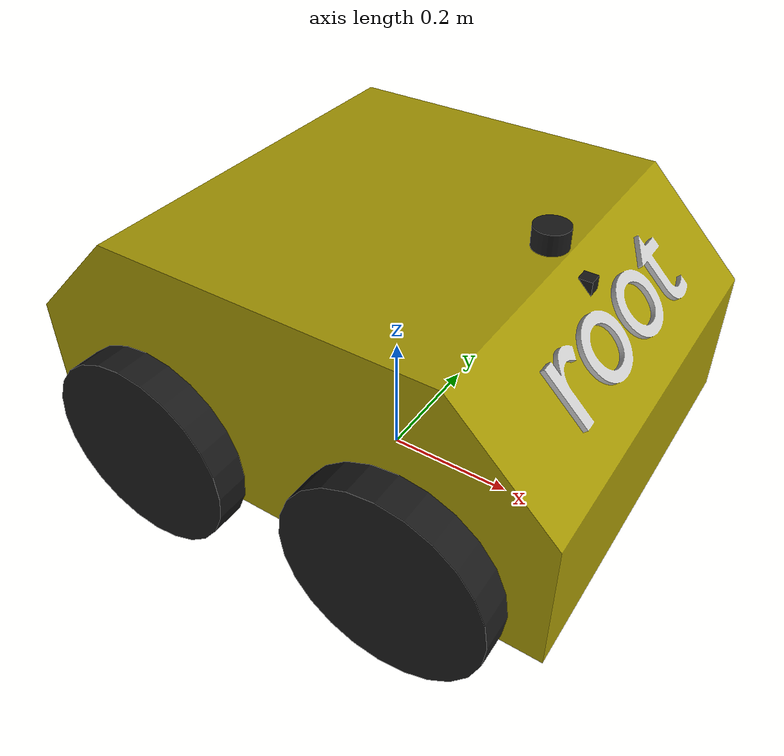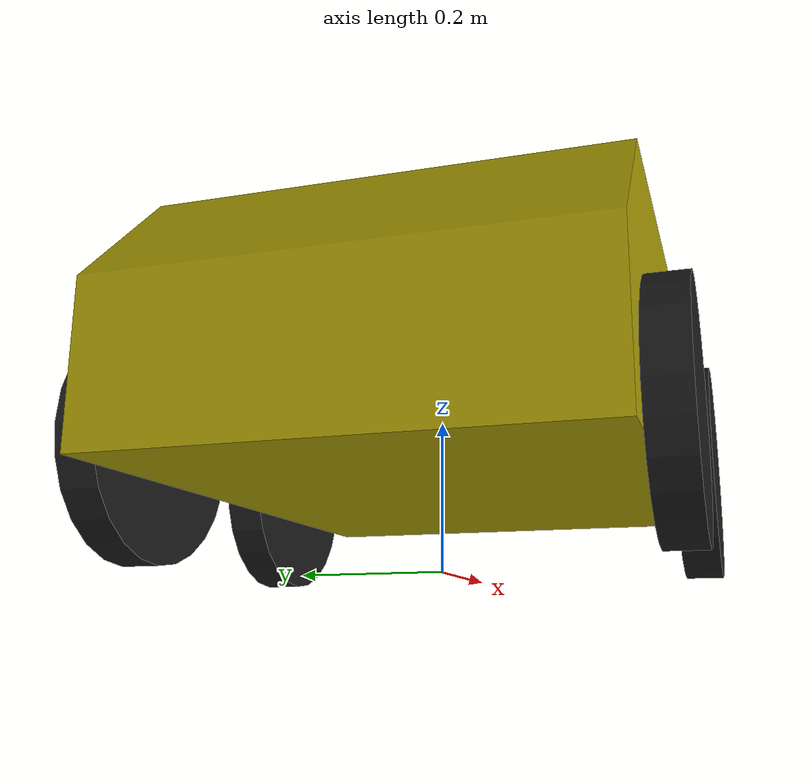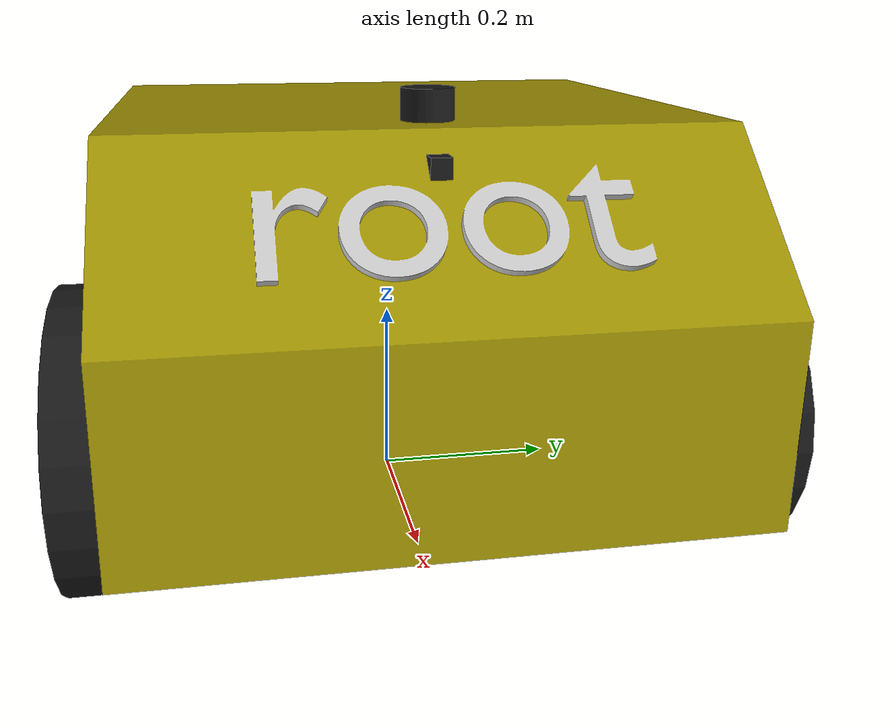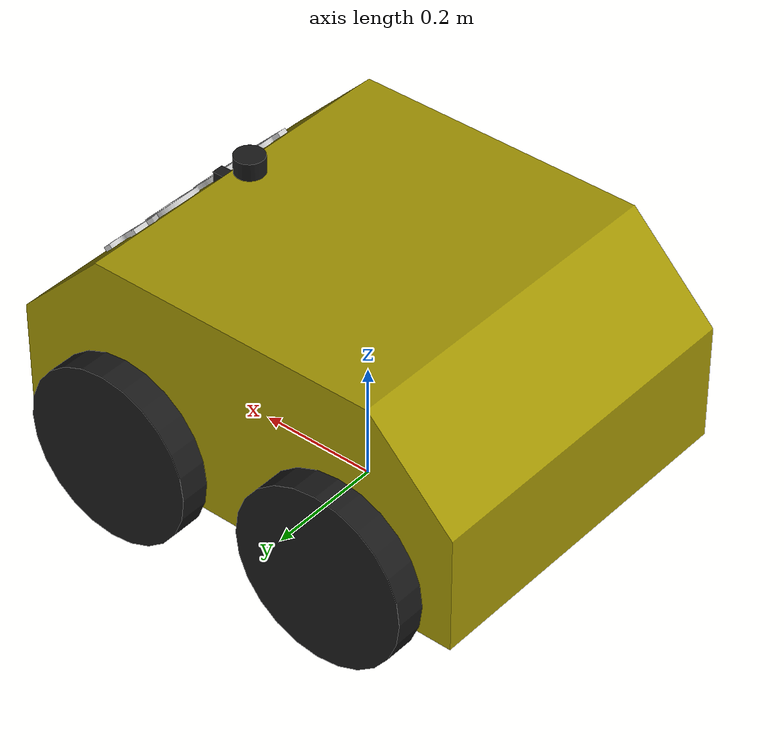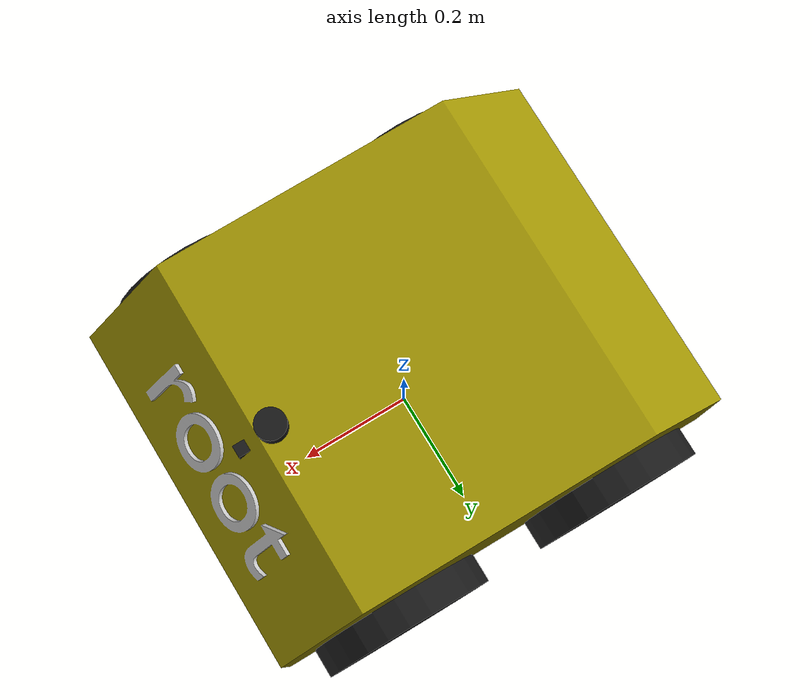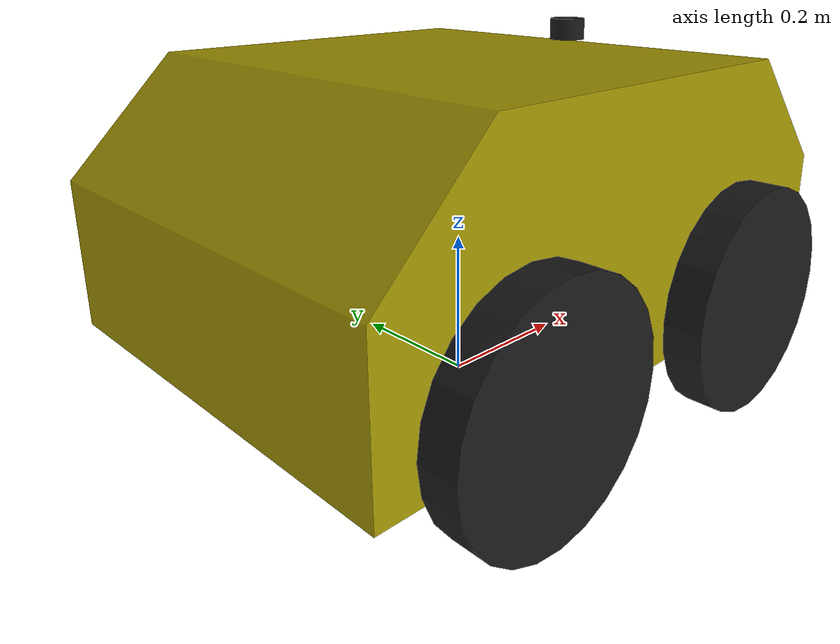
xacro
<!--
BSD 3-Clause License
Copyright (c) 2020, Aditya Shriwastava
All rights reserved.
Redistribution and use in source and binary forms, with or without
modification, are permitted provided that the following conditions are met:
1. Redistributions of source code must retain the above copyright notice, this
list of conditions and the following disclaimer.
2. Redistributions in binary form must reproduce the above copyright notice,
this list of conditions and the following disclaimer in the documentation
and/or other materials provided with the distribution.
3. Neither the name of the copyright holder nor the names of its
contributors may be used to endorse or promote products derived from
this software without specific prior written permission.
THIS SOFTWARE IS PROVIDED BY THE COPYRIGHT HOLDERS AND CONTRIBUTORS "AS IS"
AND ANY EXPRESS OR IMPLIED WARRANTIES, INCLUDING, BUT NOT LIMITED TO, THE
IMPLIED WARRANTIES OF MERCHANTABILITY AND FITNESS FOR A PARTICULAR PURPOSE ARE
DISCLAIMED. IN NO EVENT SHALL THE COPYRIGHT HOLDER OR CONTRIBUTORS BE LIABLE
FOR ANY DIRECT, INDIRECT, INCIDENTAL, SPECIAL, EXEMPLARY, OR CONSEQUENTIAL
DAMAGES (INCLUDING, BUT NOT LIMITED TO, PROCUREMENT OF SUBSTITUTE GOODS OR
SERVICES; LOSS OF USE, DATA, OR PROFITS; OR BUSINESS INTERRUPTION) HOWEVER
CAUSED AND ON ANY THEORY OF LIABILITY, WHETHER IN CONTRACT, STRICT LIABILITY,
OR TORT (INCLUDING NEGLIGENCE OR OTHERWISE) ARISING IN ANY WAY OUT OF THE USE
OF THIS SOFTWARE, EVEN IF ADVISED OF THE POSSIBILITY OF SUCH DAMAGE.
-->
<?xml version="1.0"?>

<robot xmlns:xacro="http://www.ros.org/wiki/xacro" name="root">

  <xacro:arg name="enable_lidar_2d" default="true"/>
  <xacro:arg name="enable_front_camera" default="true"/>
  <xacro:arg name="enable_imu" default="true"/>
  <xacro:arg name="enable_lidar_3d" default="false"/>
  <xacro:arg name="enable_front_stereo_camera" default="false"/>

	<!--Material description-->
	<material name="Black">
		<color rgba="0.1 0.1 0.1 1"/>
	</material>

  <material name="Red">
    <color rgba="0.7 0.1 0.1 1"/>
  </material>

	<!--Link description-->
	<link name="base_footprint"/>

	<link name="base_link">
		<inertial>
			<origin xyz="0 0 ${164/1000}" rpy="0 0 0"/>
			<mass value="6" />
			<inertia ixx="0.2370" ixy="0" ixz="0"
							 iyy="0.3401" iyz="0"
							 izz="0.4631" />
		</inertial>
		<visual>
			<origin xyz="0 0 0" rpy="0 0 0" />
			<geometry>
				<mesh filename="package://root_description/meshes/base_link/base_link_visual.dae" />
			</geometry>
		</visual>
		<collision>
			<origin xyz="0 0 0" rpy="0 0 0" />
			<geometry>
				<mesh filename="package://root_description/meshes/base_link/base_link_collision.stl" />
			</geometry>
		</collision>
	</link>

  <xacro:macro name="wheel" params="side position">
    <link name="wheel_${side}_${position}">
      <inertial>
        <origin xyz="0 0 0" rpy="0 0 0"/>
        <mass value="0.5" />
        <inertia ixx="0.0056"
                 ixy="0"
                 ixz="0"
                 iyy="0.0112"
                 iyz="0"
                 izz="0.0056" />
      </inertial>
      <visual>
        <origin xyz="0 0 0" rpy="${pi/2} 0 0" />
        <geometry>
          <cylinder length="0.05" radius="0.15"/>
        </geometry>
        <material name="Black"/>
      </visual>
      <collision>
        <origin xyz="0 0 0" rpy="${pi/2} 0 0" />
        <geometry>
          <cylinder length="0.05" radius="0.15"/>
        </geometry>
      </collision>
    </link>
  </xacro:macro>

	<xacro:wheel side="right" position="front"/>
  <xacro:wheel side="right" position="rear"/>
	<xacro:wheel side="left" position="front"/>
  <xacro:wheel side="left" position="rear"/>

  <!--Gazebo additional link properties-->
  <xacro:macro name="wheel_gazebo" params="side position">
    <gazebo reference="wheel_${side}_${position}">
      <material>Gazebo/Black</material>
      <mu1>1</mu1>
      <mu2>1</mu2>
      <kp>10000000.0</kp>
      <kd>1.0</kd>
      <fdir1>0 0 1</fdir1>
    </gazebo>
  </xacro:macro>

  <xacro:wheel_gazebo side="right" position="front"/>
  <xacro:wheel_gazebo side="right" position="rear"/>
  <xacro:wheel_gazebo side="left" position="front"/>
  <xacro:wheel_gazebo side="left" position="rear"/>

	<!--Joints description-->
	<joint name="base_footprint_base_link_joint" type="fixed">
    <origin xyz="0 0 ${100/1000}" rpy="0 0 0" />
    <parent link="base_footprint"/>
    <child link="base_link"/>
  </joint>

  <xacro:macro name="wheel_joint" params="side position *origin">
    <joint name="base_link_wheel_${side}_${position}_joint" type="continuous">
      <xacro:insert_block name="origin"/>
      <parent link="base_link"/>
      <child link="wheel_${side}_${position}"/>
      <axis xyz="0 1 0"/>
      <dynamics damping="0.7" friction="1.0"/>
    </joint>
  </xacro:macro>

  <xacro:wheel_joint side="right" position="front">
    <origin xyz="${200/1000} ${-325/1000} ${50/1000}" rpy="0 0 0"/>
  </xacro:wheel_joint>

  <xacro:wheel_joint side="right" position="rear">
    <origin xyz="${-200/1000} ${-325/1000} ${50/1000}" rpy="0 0 0"/>
  </xacro:wheel_joint>

  <xacro:wheel_joint side="left" position="front">
    <origin xyz="${200/1000} ${325/1000} ${50/1000}" rpy="0 0 0"/>
  </xacro:wheel_joint>

  <xacro:wheel_joint side="left" position="rear">
    <origin xyz="${-200/1000} ${325/1000} ${50/1000}" rpy="0 0 0"/>
  </xacro:wheel_joint>

  <!--Gazebo ros_control plugin related-->
  <gazebo>
    <plugin name="gazebo_ros_control" filename="libgazebo_ros_control.so">
      <robotNamespace>/root</robotNamespace>
      <controlPeriod>0.02</controlPeriod>
      <robotSimType>gazebo_ros_control/DefaultRobotHWSim</robotSimType>
    </plugin>
  </gazebo>

  <xacro:macro name="wheel_transmission" params="side position">
    <transmission name="base_link_wheel_${side}_${position}_transmission">
      <type>transmission_interface/SimpleTransmission</type>
      <joint name="base_link_wheel_${side}_${position}_joint">
        <hardwareInterface>hardware_interface/VelocityJointInterface</hardwareInterface>
      </joint>
      <actuator name="base_link_wheel_${side}_${position}_actuator">
        <mechanicalReduction>1</mechanicalReduction>
      </actuator>
    </transmission>
  </xacro:macro>

  <xacro:wheel_transmission side="right" position="front"/>
  <xacro:wheel_transmission side="right" position="rear"/>
  <xacro:wheel_transmission side="left" position="front"/>
  <xacro:wheel_transmission side="left" position="rear"/>

<!--Gazebo sensors related plugins-->
<xacro:if value="$(arg enable_lidar_2d)">
  <xacro:include filename="$(find root_description)/urdf/lidar_2d.urdf.xacro"/>
  <xacro:lidar_2d link="lidar_2d"
                  parent="base_link"
                  material="Black">
    <origin xyz="0.225 0 0.37" rpy="0 0 0"/>
  </xacro:lidar_2d>
</xacro:if>

<xacro:if value="$(arg enable_lidar_3d)">
  <xacro:include filename="$(find root_description)/urdf/lidar_3d.urdf.xacro"/>
  <xacro:lidar_3d link="lidar_3d"
                  parent="base_link"
                  material="Red">
    <origin xyz="0 0 0.4" rpy="0 0 0"/>
  </xacro:lidar_3d>
</xacro:if>

<xacro:if value="$(arg enable_front_camera)">
  <xacro:include filename="$(find root_description)/urdf/camera.urdf.xacro"/>
  <xacro:camera_rgb link="front_camera"
                parent="base_link"
                material="Black">
    <origin xyz="0.280 0 0.32" rpy="0 0 0"/>
  </xacro:camera_rgb>
</xacro:if>

<xacro:if value="$(arg enable_front_stereo_camera)">
  <xacro:include filename="$(find root_description)/urdf/stereo_camera.urdf.xacro"/>
  <xacro:stereo_camera link="front_stereo_camera"
                parent="base_link"
                material="Red">
    <origin xyz="0.280 0 0.345" rpy="0 0 0"/>
  </xacro:stereo_camera>
</xacro:if>

<xacro:if value="$(arg enable_imu)">
  <xacro:include filename="$(find root_description)/urdf/imu.urdf.xacro"/>
  <xacro:imu link="imu"
             parent="base_link">
   <origin xyz="0.280 0 0.360" rpy="0 0 0"/>
  </xacro:imu>
</xacro:if>

</robot>

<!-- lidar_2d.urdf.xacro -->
<robot xmlns:xacro="http://www.ros.org/wiki/xacro" name="root">

  <xacro:macro name="lidar_2d" params="link parent material *origin">

    <link name="${link}">
      <visual>
        <origin xyz="0 0 0" rpy="0 0 0" />
        <geometry>
          <cylinder length="0.03" radius="0.025"/>
        </geometry>
        <material name="${material}"/>
      </visual>
    </link>

    <gazebo reference="${link}">
      <material>Gazebo/${material}</material>
    </gazebo>

    <joint name="${parent}_${link}_joint" type="fixed">
      <xacro:insert_block name="origin"/>
      <parent link="${parent}"/>
      <child link="${link}" />
    </joint>

    <gazebo reference="${link}">
      <turnGravityOff>false</turnGravityOff>
      <sensor type="ray" name="lidar_2d">
        <pose>0 0 0 0 0 0</pose>
        <visualize>false</visualize>
        <update_rate>40</update_rate>
        <ray>
          <scan>
            <horizontal>
              <samples>720</samples>
              <resolution>1</resolution>
              <min_angle>${-pi}</min_angle>
              <max_angle>${pi}</max_angle>
            </horizontal>
          </scan>
          <range>
            <min>${150/1000}</min>
            <max>12.0</max>
            <resolution>0.01</resolution>
          </range>
          <noise>
            <type>gaussian</type>
            <mean>0.0</mean>
            <stddev>0.02</stddev>
          </noise>
        </ray>
        <plugin name="gazebo_ros_lidar_controller" filename="libgazebo_ros_laser.so">
          <topicName>root/scan_2d</topicName>
          <frameName>${link}</frameName>
        </plugin>
      </sensor>
    </gazebo>

  </xacro:macro>

</robot>

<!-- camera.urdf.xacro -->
<robot xmlns:xacro="http://www.ros.org/wiki/xacro" name="root">

  <xacro:macro name="camera_rgb" params="link parent material *origin">

    <link name="${link}">
      <visual>
        <origin xyz="0 0 0" rpy="0 0 0" />
        <geometry>
          <box size="0.02 0.02 0.02"/>
        </geometry>
        <material name="${material}"/>
      </visual>
    </link>

    <link name="${link}_optical"/>

    <gazebo reference="${link}">
      <material>Gazebo/${material}</material>
    </gazebo>

    <joint name="${parent}_${link}_joint" type="fixed">
      <xacro:insert_block name="origin"/>
      <parent link="${parent}"/>
      <child link="${link}" />
    </joint>

    <joint name="${link}_${link}_optical_joint" type="fixed">
      <origin xyz="0 0 0" rpy="${pi/2} ${pi} ${pi/2}"/>
      <parent link="${link}"/>
      <child link="${link}_optical" />
    </joint>

    <gazebo reference="${link}">
      <sensor type="camera" name="camera">
        <update_rate>30.0</update_rate>
        <camera name="${link}">
          <horizontal_fov>1.3962634</horizontal_fov>
          <image>
            <width>1920</width>
            <height>1080</height>
            <format>R8G8B8</format>
          </image>
          <clip>
            <near>0.02</near>
            <far>300</far>
          </clip>
          <noise>
            <type>gaussian</type>
            <mean>0.0</mean>
            <stddev>0.007</stddev>
          </noise>
        </camera>
        <plugin name="camera_controller" filename="libgazebo_ros_camera.so">
          <alwaysOn>true</alwaysOn>
          <updateRate>0.0</updateRate>
          <cameraName>root/${link}</cameraName>
          <imageTopicName>image_raw</imageTopicName>
          <cameraInfoTopicName>camera_info</cameraInfoTopicName>
          <frameName>${link}</frameName>
          <hackBaseline>0.07</hackBaseline>
          <distortionK1>0.0</distortionK1>
          <distortionK2>0.0</distortionK2>
          <distortionK3>0.0</distortionK3>
          <distortionT1>0.0</distortionT1>
          <distortionT2>0.0</distortionT2>
        </plugin>
      </sensor>
    </gazebo>

</xacro:macro>

</robot>

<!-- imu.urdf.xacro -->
<robot xmlns:xacro="http://www.ros.org/wiki/xacro" name="root">

<xacro:macro name="imu" params="link parent *origin">

  <link name="${link}"/>

  <joint name="${parent}_${link}_joint" type="fixed">
    <xacro:insert_block name="origin"/>
    <parent link="${parent}"/>
    <child link="${link}" />
  </joint>

  <gazebo>
    <plugin name="imu_controller" filename="libhector_gazebo_ros_imu.so">
      <robotNamespace>root</robotNamespace>
      <updateRate>50.0</updateRate>
      <bodyName>${link}</bodyName>
      <topicName>imu/data</topicName>
      <accelDrift>0.5 0.5 0.5</accelDrift>
      <accelGaussianNoise>0.35 0.35 0.35</accelGaussianNoise>
      <rateDrift>0.1 0.1 0.1 </rateDrift>
      <rateGaussianNoise>0.05 0.05 0.05 </rateGaussianNoise>
      <yawDrift>0.1</yawDrift>
      <yawGaussianNoise>0.05</yawGaussianNoise>
    </plugin>
  </gazebo>

</xacro:macro>

</robot>
